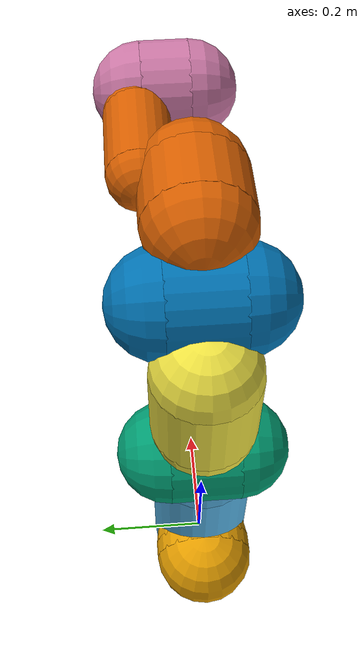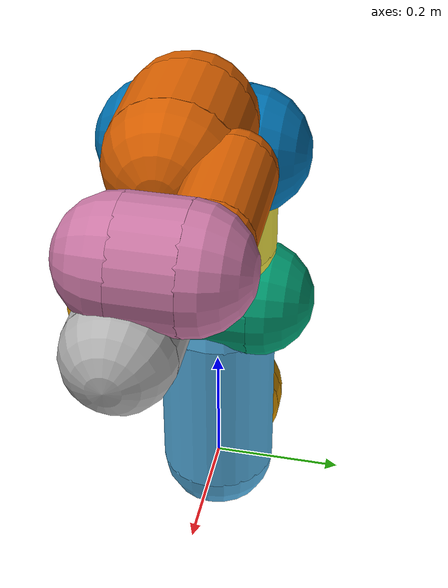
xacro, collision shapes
<?xml version='1.0' encoding='utf-8'?>
<robot xmlns:xacro="http://www.ros.org/wiki/xacro" name="panda">
  <xacro:arg name="arm_id" default="panda"/> <!-- Name of this panda -->
  <xacro:arg name="hand" default="false"/> <!-- Should a franka_gripper be mounted at the flange? -->
  <xacro:arg name="camera" default="true"/> <!-- Should a camera be mounted at the flange? -->
  <xacro:arg name="camera_model" default="blackfly_s"/> <!-- Which camera model will be used -->
  <xacro:arg name="robot_ip" default=""/> <!-- IP address or hostname of the robot" -->
  <xacro:arg name="use_fake_hardware" default="false"/>
  <xacro:arg name="fake_sensor_commands" default="false"/>

  <xacro:include filename="$(find franka_description)/robots/panda_arm.xacro"/>
  <xacro:panda_arm arm_id="$(arg arm_id)" safety_distance="0.03"/>

  <xacro:if value="$(arg hand)">
    <xacro:include filename="$(find franka_description)/robots/hand.xacro"/>
    <xacro:hand ns="$(arg arm_id)" rpy="0 0 ${-pi/4}" connected_to="$(arg arm_id)_link8" safety_distance="0.03"/>
  </xacro:if>
  <xacro:if value="$(arg camera)">
    <xacro:include filename="$(find flir_camera_description)/urdf/camera.urdf.xacro"/>
    <xacro:camera ns="$(arg arm_id)" rpy="0 ${-pi/2} 0" xyz="0.01425 0 0.09" connected_to="$(arg arm_id)_link8"/>
  </xacro:if>
  <xacro:include filename="$(find franka_description)/robots/panda_arm.ros2_control.xacro"/>
  <xacro:panda_arm_ros2_control ns="$(arg arm_id)" robot_ip="$(arg robot_ip)" use_fake_hardware="$(arg use_fake_hardware)" fake_sensor_commands="$(arg fake_sensor_commands)"/>
</robot>

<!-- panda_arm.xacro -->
<robot xmlns:xacro="http://www.ros.org/wiki/xacro" name="panda">
  <!-- safety_distance: Minimum safety distance in [m] by which the collision volumes are expanded and which is enforced during robot motions -->
  <!-- arm_id: Namespace of the panda arm. Serves to differentiate between arms in case of multiple instances. -->
  <xacro:macro name="panda_arm" params="arm_id:='panda' description_pkg:='franka_description' connected_to:='' xyz:='0 0 0' rpy:='0 0 0' safety_distance:=0">
    <xacro:unless value="${not connected_to}">
      <joint name="${arm_id}_joint_${connected_to}" type="fixed">
        <parent link="${connected_to}"/>
        <child link="${arm_id}_link0"/>
        <origin rpy="${rpy}" xyz="${xyz}"/>
      </joint>
    </xacro:unless>
    <link name="${arm_id}_link0">
      <visual>
        <geometry>
          <mesh filename="package://${description_pkg}/meshes/visual/link0.dae"/>
        </geometry>
      </visual>
      <collision>
        <origin xyz="-0.075 0 0.06" rpy="0 ${pi/2} 0"/>
        <geometry>
          <cylinder radius="${0.06+safety_distance}" length="0.03" />
        </geometry>
      </collision>
      <collision>
        <origin xyz="-0.06 0 0.06" rpy="0 0 0"/>
        <geometry>
          <sphere radius="${0.06+safety_distance}" />
        </geometry>
      </collision>
      <collision>
        <origin xyz="-0.09 0 0.06" rpy="0 0 0"/>
        <geometry>
          <sphere radius="${0.06+safety_distance}" />
        </geometry>
      </collision>
    </link>
    <link name="${arm_id}_link1">
      <visual>
        <geometry>
          <mesh filename="package://${description_pkg}/meshes/visual/link1.dae"/>
        </geometry>
      </visual>
      <collision>
        <origin xyz="0 0 -0.1915" rpy="0 0 0"/>
        <geometry>
          <cylinder radius="${0.06+safety_distance}" length="0.2830" />
        </geometry>
      </collision>
      <collision>
        <origin xyz="0 0 -0.333" rpy="0 0 0"/>
        <geometry>
          <sphere radius="${0.06+safety_distance}" />
        </geometry>
      </collision>
      <collision>
        <origin xyz="0 0 -0.05" rpy="0 0 0"/>
        <geometry>
          <sphere radius="${0.06+safety_distance}" />
        </geometry>
      </collision>
    </link>
    <joint name="${arm_id}_joint1" type="revolute">
      <safety_controller k_position="100.0" k_velocity="40.0" soft_lower_limit="-2.7473" soft_upper_limit="2.7473"/>
      <origin rpy="0 0 0" xyz="0 0 0.333"/>
      <parent link="${arm_id}_link0"/>
      <child link="${arm_id}_link1"/>
      <axis xyz="0 0 1"/>
      <limit effort="87" lower="-2.7473" upper="2.7473" velocity="2.1750" acceleration="1.0"/>
    </joint>
    <link name="${arm_id}_link2">
      <visual>
        <geometry>
          <mesh filename="package://${description_pkg}/meshes/visual/link2.dae"/>
        </geometry>
      </visual>
      <collision>
        <origin xyz="0 0 0" rpy="0 0 0"/>
        <geometry>
          <cylinder radius="${0.06+safety_distance}" length="0.12" />
        </geometry>
      </collision>
      <collision>
        <origin xyz="0 0 -0.06" rpy="0 0 0"/>
        <geometry>
          <sphere radius="${0.06+safety_distance}" />
        </geometry>
      </collision>
      <collision>
        <origin xyz="0 0 0.06" rpy="0 0 0"/>
        <geometry>
          <sphere radius="${0.06+safety_distance}" />
        </geometry>
      </collision>
    </link>
    <joint name="${arm_id}_joint2" type="revolute">
      <safety_controller k_position="100.0" k_velocity="40.0" soft_lower_limit="-1.6728" soft_upper_limit="1.6728"/>
      <origin rpy="${-pi/2} 0 0" xyz="0 0 0"/>
      <parent link="${arm_id}_link1"/>
      <child link="${arm_id}_link2"/>
      <axis xyz="0 0 1"/>
      <limit effort="87" lower="-1.6728" upper="1.6728" velocity="2.1750" acceleration="1.0"/>
    </joint>
    <link name="${arm_id}_link3">
      <visual>
        <geometry>
          <mesh filename="package://${description_pkg}/meshes/visual/link3.dae"/>
        </geometry>
      </visual>
      <collision>
        <origin xyz="0 0 -0.145" rpy="0 0 0"/>
        <geometry>
          <cylinder radius="${0.06+safety_distance}" length="0.15" />
        </geometry>
      </collision>
      <collision>
        <origin xyz="0 0 -0.22" rpy="0 0 0"/>
        <geometry>
          <sphere radius="${0.06+safety_distance}" />
        </geometry>
      </collision>
      <collision>
        <origin xyz="0 0 -0.07" rpy="0 0 0"/>
        <geometry>
          <sphere radius="${0.06+safety_distance}" />
        </geometry>
      </collision>
    </link>
    <joint name="${arm_id}_joint3" type="revolute">
      <safety_controller k_position="100.0" k_velocity="40.0" soft_lower_limit="-2.7473" soft_upper_limit="2.7473"/>
      <origin rpy="${pi/2} 0 0" xyz="0 -0.316 0"/>
      <parent link="${arm_id}_link2"/>
      <child link="${arm_id}_link3"/>
      <axis xyz="0 0 1"/>
      <limit effort="87" lower="-2.7473" upper="2.7473" velocity="2.1750" acceleration="1.0"/>
    </joint>
    <link name="${arm_id}_link4">
      <visual>
        <geometry>
          <mesh filename="package://${description_pkg}/meshes/visual/link4.dae"/>
        </geometry>
      </visual>
      <collision>
        <origin xyz="0 0 0" rpy="0 0 0"/>
        <geometry>
          <cylinder radius="${0.06+safety_distance}" length="0.12" />
        </geometry>
      </collision>
      <collision>
        <origin xyz="0 0 0.06" rpy="0 0 0"/>
        <geometry>
          <sphere radius="${0.06+safety_distance}" />
        </geometry>
      </collision>
      <collision>
        <origin xyz="0 0 -0.06" rpy="0 0 0"/>
        <geometry>
          <sphere radius="${0.06+safety_distance}" />
        </geometry>
      </collision>
    </link>
    <joint name="${arm_id}_joint4" type="revolute">
      <safety_controller k_position="100.0" k_velocity="40.0" soft_lower_limit="-2.9218" soft_upper_limit="-0.2198"/>
      <origin rpy="${pi/2} 0 0" xyz="0.0825 0 0"/>
      <parent link="${arm_id}_link3"/>
      <child link="${arm_id}_link4"/>
      <axis xyz="0 0 1"/>
      <limit effort="87" lower="-2.9218" upper="-0.2198" velocity="2.1750" acceleration="1.0"/>
    </joint>
    <link name="${arm_id}_link5">
      <visual>
        <geometry>
          <mesh filename="package://${description_pkg}/meshes/visual/link5.dae"/>
        </geometry>
      </visual>
      <collision>
        <origin xyz="0 0 -0.26" rpy="0 0 0"/>
        <geometry>
          <cylinder radius="${0.06+safety_distance}" length="0.1" />
        </geometry>
      </collision>
      <collision>
        <origin xyz="0 0 -0.31" rpy="0 0 0"/>
        <geometry>
          <sphere radius="${0.06+safety_distance}" />
        </geometry>
      </collision>
      <collision>
        <origin xyz="0 0 -0.21" rpy="0 0 0"/>
        <geometry>
          <sphere radius="${0.06+safety_distance}" />
        </geometry>
      </collision>
      <collision>
        <origin xyz="0 0.08 -0.13" rpy="0 0 0"/>
        <geometry>
          <cylinder radius="${0.025+safety_distance}" length="0.14" />
        </geometry>
      </collision>
      <collision>
        <origin xyz="0 0.08 -0.06" rpy="0 0 0"/>
        <geometry>
          <sphere radius="${0.025+safety_distance}" />
        </geometry>
      </collision>
      <collision>
        <origin xyz="0 0.08 -0.20" rpy="0 0 0"/>
        <geometry>
          <sphere radius="${0.025+safety_distance}" />
        </geometry>
      </collision>

    </link>
    <joint name="${arm_id}_joint5" type="revolute">
      <safety_controller k_position="100.0" k_velocity="40.0" soft_lower_limit="-2.7473" soft_upper_limit="2.7473"/>
      <origin rpy="${-pi/2} 0 0" xyz="-0.0825 0.384 0"/>
      <parent link="${arm_id}_link4"/>
      <child link="${arm_id}_link5"/>
      <axis xyz="0 0 1"/>
      <limit effort="12" lower="-2.7473" upper="2.7473" velocity="2.6100" acceleration="1.0"/>
    </joint>
    <link name="${arm_id}_link6">
      <visual>
        <geometry>
          <mesh filename="package://${description_pkg}/meshes/visual/link6.dae"/>
        </geometry>
      </visual>
      <collision>
        <origin xyz="0 0 -0.03" rpy="0 0 0"/>
        <geometry>
          <cylinder radius="${0.05+safety_distance}" length="0.08" />
        </geometry>
      </collision>
      <collision>
        <origin xyz="0 0 0.01" rpy="0 0 0"/>
        <geometry>
          <sphere radius="${0.05+safety_distance}" />
        </geometry>
      </collision>
      <collision>
        <origin xyz="0 0 -0.07" rpy="0 0 0"/>
        <geometry>
          <sphere radius="${0.05+safety_distance}" />
        </geometry>
      </collision>
    </link>
    <joint name="${arm_id}_joint6" type="revolute">
      <safety_controller k_position="100.0" k_velocity="40.0" soft_lower_limit="-0.0775" soft_upper_limit="3.6025"/>
      <origin rpy="${pi/2} 0 0" xyz="0 0 0"/>
      <parent link="${arm_id}_link5"/>
      <child link="${arm_id}_link6"/>
      <axis xyz="0 0 1"/>
      <limit effort="12" lower="-0.0775" upper="3.6025" velocity="2.6100" acceleration="1.0"/>
    </joint>
    <link name="${arm_id}_link7">
      <visual>
        <geometry>
          <mesh filename="package://${description_pkg}/meshes/visual/link7.dae"/>
        </geometry>
      </visual>
      <collision>
        <origin xyz="0 0 0.01" rpy="0 0 0"/>
        <geometry>
          <cylinder radius="${0.04+safety_distance}" length="0.14" />
        </geometry>
      </collision>
      <collision>
        <origin xyz="0 0 0.08" rpy="0 0 0"/>
        <geometry>
          <sphere radius="${0.04+safety_distance}"  />
        </geometry>
      </collision>
      <collision>
        <origin xyz="0 0 -0.06" rpy="0 0 0"/>
        <geometry>
          <sphere radius="${0.04+safety_distance}"  />
        </geometry>
      </collision>
    </link>
    <joint name="${arm_id}_joint7" type="revolute">
      <safety_controller k_position="100.0" k_velocity="40.0" soft_lower_limit="-2.7473" soft_upper_limit="2.7473"/>
      <origin rpy="${pi/2} 0 0" xyz="0.088 0 0"/>
      <parent link="${arm_id}_link6"/>
      <child link="${arm_id}_link7"/>
      <axis xyz="0 0 1"/>
      <limit effort="12" lower="-2.7473" upper="2.7473" velocity="2.6100" acceleration="1.0"/>
    </joint>
    <link name="${arm_id}_link8">
      <collision>
        <origin xyz="0.0424 0.0424 -0.0250" rpy="${pi} ${pi/2} ${pi/2}"/>
        <geometry>
          <cylinder radius="${0.03+safety_distance}"  length="0.01" />
        </geometry>
      </collision>
      <collision>
        <origin xyz="0.0424 0.0424 -0.02" rpy="0 0 0"/>
        <geometry>
          <sphere radius="${0.03+safety_distance}"  />
        </geometry>
      </collision>
      <collision>
        <origin xyz="0.0424 0.0424 -0.03" rpy="0 0 0"/>
        <geometry>
          <sphere radius="${0.03+safety_distance}"  />
        </geometry>
      </collision>
    </link>
    <joint name="${arm_id}_joint8" type="fixed">
      <origin rpy="0 0 0" xyz="0 0 0.107"/>
      <parent link="${arm_id}_link7"/>
      <child link="${arm_id}_link8"/>
    </joint>
  </xacro:macro>
</robot>

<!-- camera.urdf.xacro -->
<robot xmlns:xacro="http://www.ros.org/wiki/xacro" name="camera">
    <xacro:macro name="camera"
        params="frame:=camera name:=camera camera_x:=0.047758 camera_y:=0.029 camera_z:=0.029 camera_mass:=0.03
                lens_r:=0.016 lens_h:=0.035 lens_mass:=0.05
                hfov:=1.0471975512 fps:=23 width:=720 height:=540 format:=R8G8B8 near:=0.5 far:=300 connected_to:='' ns:='' rpy:='0 0 0' xyz:='0 0 0' ">

        <!-- Joint definition if connected_to is specified -->
        <xacro:unless value="${connected_to == ''}">
            <joint name="${ns}_camera_joint" type="fixed">
                <parent link="${connected_to}"/>
                <child link="${frame}"/>
                <origin xyz="${xyz}" rpy="${rpy}"/>
            </joint>
        </xacro:unless>

        <!-- Camera body link -->
        <link name="${frame}">
            <inertial>
                <mass value="${camera_mass}" />
                <inertia ixx="1e-6" ixy="0" ixz="0" iyy="1e-6" iyz="0" izz="1e-6" />
            </inertial>
            <visual>
                <origin xyz="0 0 0.01425" rpy="0 0 0" />
                <geometry>
                    <mesh filename="package://flir_camera_description/meshes/flir_blackfly_s.stl"/>
                </geometry>
                <material name="dark_grey"><color rgba="0.2 0.2 0.2 1"/></material>
            </visual>
            <collision>
                <origin xyz="0.003 0 ${camera_z/2}" rpy="0 0 0" />
                <geometry>
                    <box size="${camera_x} ${camera_y} ${camera_z}" />
                </geometry>
            </collision>
        </link>

        <!-- Lens link -->
        <link name="${frame}_lens">
            <inertial>
                <mass value="${lens_mass}" />
                <inertia ixx="1e-6" ixy="0" ixz="0" iyy="1e-6" iyz="0" izz="1e-6" />
            </inertial>
            <visual>
                <origin xyz="${lens_h/2} 0 0" rpy="0 1.5707 0" />
                <geometry>
                    <cylinder radius="${lens_r}" length="${lens_h}"/>
                </geometry>
                <material name="dark_grey"><color rgba="0.2 0.2 0.2 1"/></material>
            </visual>
            <collision>
                <origin xyz="${lens_h/2} 0 0" rpy="0 1.5707 0" />
                <geometry>
                    <cylinder radius="${lens_r}" length="${lens_h}"/>
                </geometry>
            </collision>
        </link>

        <!-- Optical frame (for Gazebo camera sensor) -->
        <link name="${frame}_optical" />

        <!-- Joints between camera, lens, and optical frame -->
        <joint name="${frame}_lens_joint" type="fixed">
            <origin xyz="0.02685 0 0.01425" rpy="0 0 0" />
            <parent link="${frame}" />
            <child link="${frame}_lens" />
        </joint>

        <joint name="${frame}_optical_joint" type="fixed">
            <origin xyz="${lens_h} 0 0" rpy="-1.570796 0 -1.570796" />
            <parent link="${frame}_lens" />
            <child link="${frame}_optical" />
        </joint>

        <!-- Gazebo camera sensor configuration -->
        <gazebo reference="${frame}_optical">
            <material>Gazebo/Grey</material>
            <sensor type="camera" name="${name}">
                <update_rate>${fps}</update_rate>
                <camera name="${name}">
                    <pose>0 0 0 0 -1.5707 1.5707</pose>
                    <horizontal_fov>${hfov}</horizontal_fov>
                    <image>
                        <width>${width}</width>
                        <height>${height}</height>
                        <format>${format}</format>
                    </image>
                    <clip>
                        <near>${near}</near>
                        <far>${far}</far>
                    </clip>
                    <noise>
                        <type>gaussian</type>
                        <mean>0.0</mean>
                        <stddev>0.007</stddev>
                    </noise>
                </camera>

                <plugin name="camera_controller" filename="libgazebo_ros_camera.so">
                    <alwaysOn>true</alwaysOn>
                    <updateRate>${fps}</updateRate>
                    <cameraName>${name}</cameraName>
                    <imageTopicName>image_raw</imageTopicName>
                    <cameraInfoTopicName>camera_info</cameraInfoTopicName>
                    <frameName>${frame}_optical</frameName>
                    <hackBaseline>0.07</hackBaseline>
                    <distortionK1>0.0</distortionK1>
                    <distortionK2>0.0</distortionK2>
                    <distortionK3>0.0</distortionK3>
                    <distortionT1>0.0</distortionT1>
                    <distortionT2>0.0</distortionT2>
                </plugin>
            </sensor>
        </gazebo>
    </xacro:macro>
</robot>
